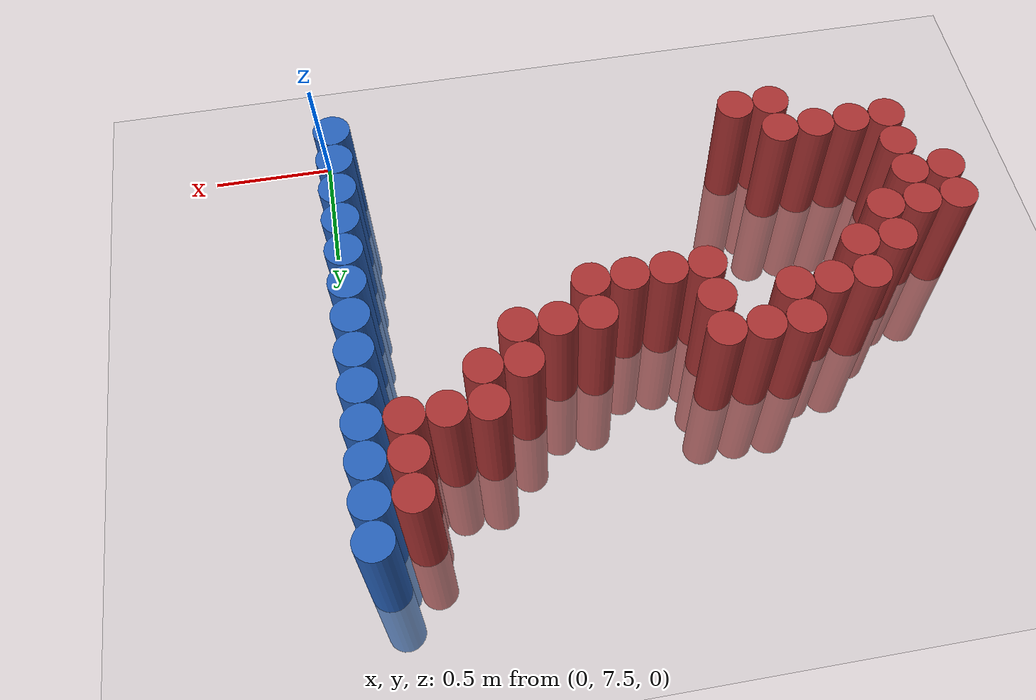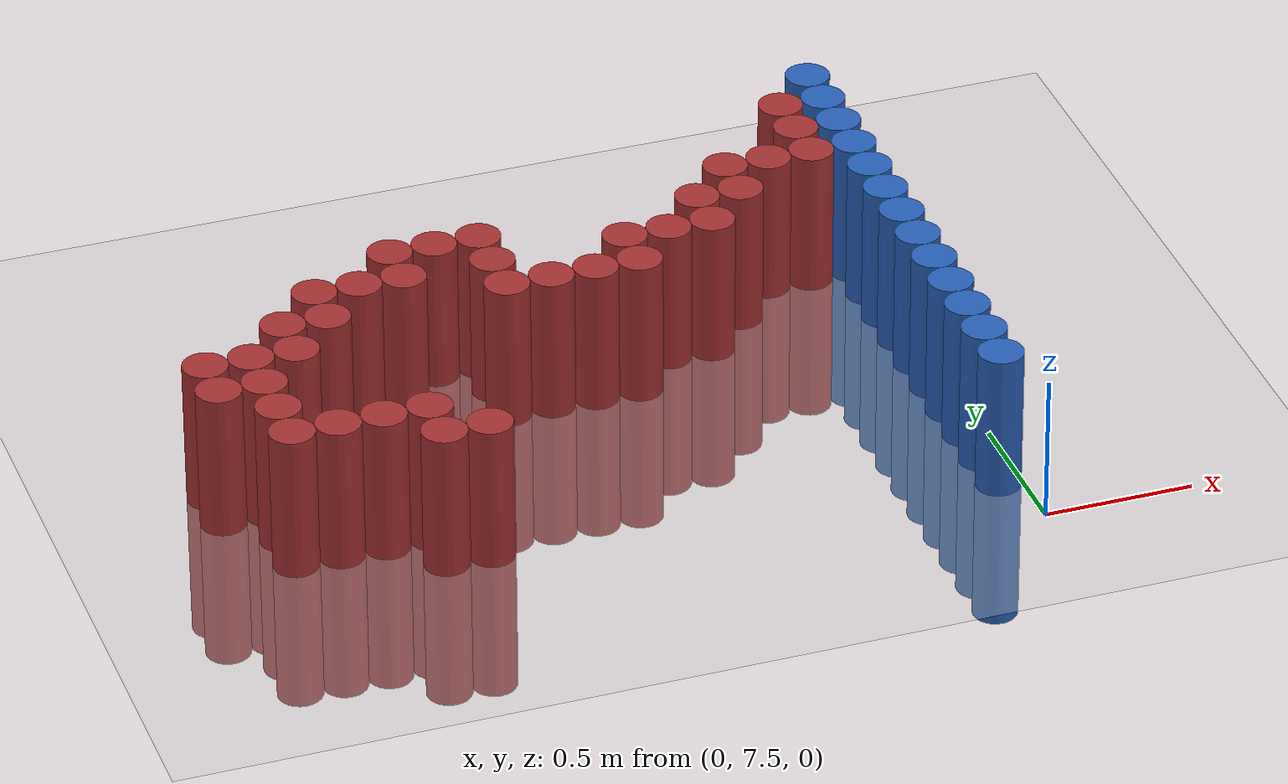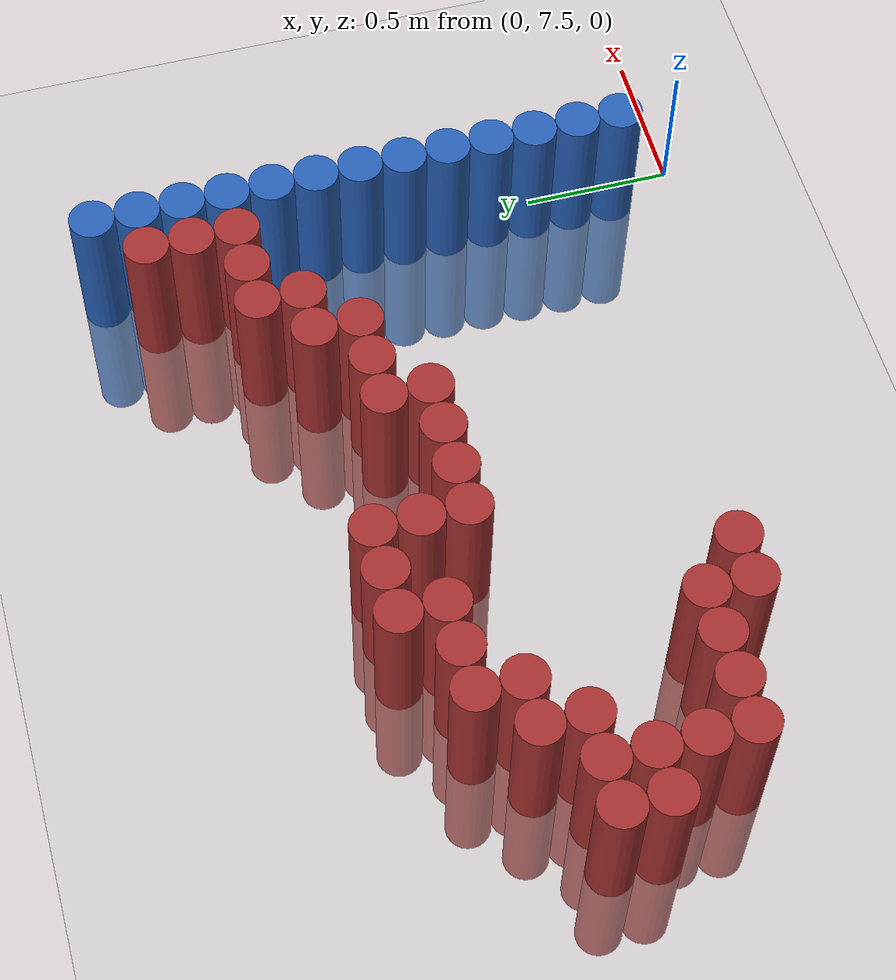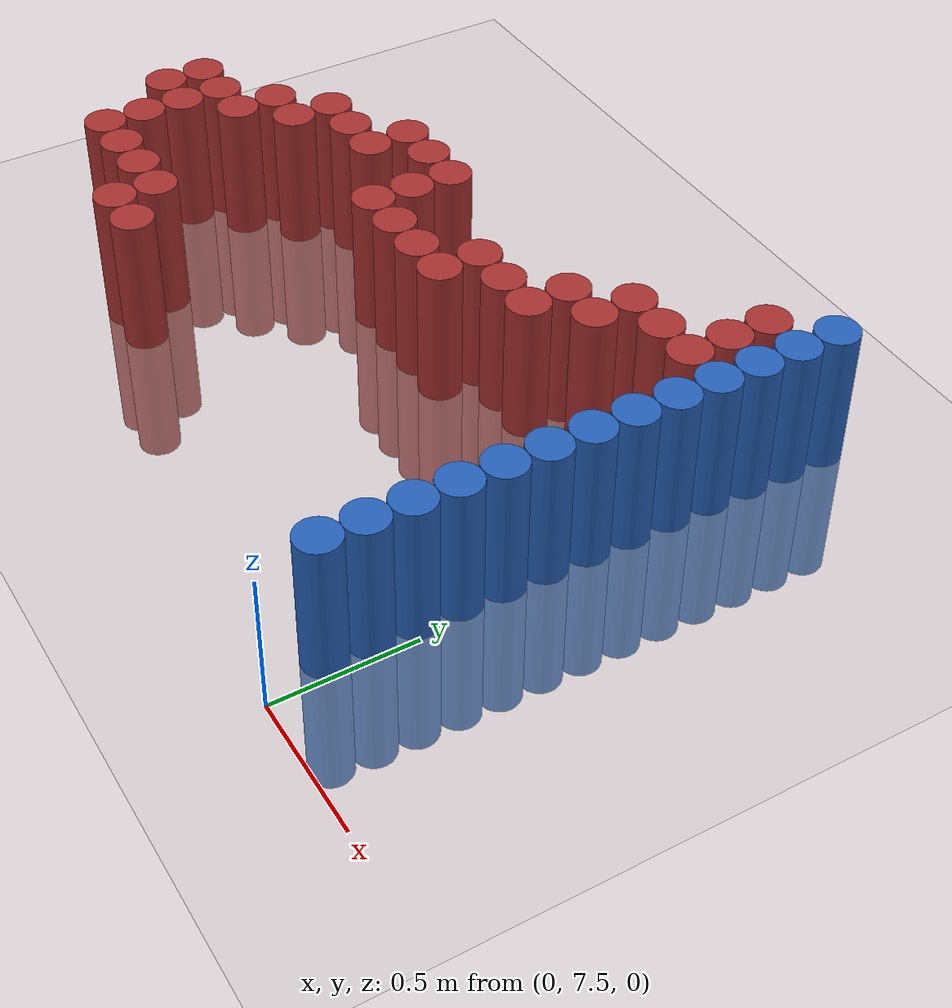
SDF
<sdf version="1.6">
 <world name="default">
  <model name="ground_plane">
   <static>1</static>
   <link name="link">
    <collision name="collision">
     <geometry><plane><normal>0 0 1</normal><size>100 100</size></plane></geometry>
     <surface><friction><ode><mu>100</mu><mu2>50</mu2></ode></friction></surface>
    </collision>
    <visual name="visual">
     <cast_shadows>0</cast_shadows>
     <geometry><plane><normal>0 0 1</normal><size>100 100</size></plane></geometry>
     <material>
      <script><uri>file://media/materials/scripts/gazebo.material</uri><name>Gazebo/Grey</name></script>
     </material>
    </visual>
   </link>
  </model>
  <model name="unit_cylinder_175">
   <static>1</static>
   <pose>-2.475000 8.325000 0.000000 0.000000 0.000000 0.000000</pose>
   <link name="link">
    <inertial>
     <mass>1</mass>
     <inertia><ixx>0.145833</ixx><ixy>0</ixy><ixz>0</ixz><iyy>0.145833</iyy><iyz>0</iyz><izz>0.125</izz></inertia>
    </inertial>
    <collision name="collision">
     <geometry><cylinder><radius>0.075000</radius><length>1</length></cylinder></geometry>
    </collision>
    <visual name="visual">
     <geometry><cylinder><radius>0.075000</radius><length>1</length></cylinder></geometry>
     <material>
      <ambient>0.648000 0.192000 0.192000 1</ambient>
      <diffuse>0.648000 0.192000 0.192000 1</diffuse>
     </material>
     <material>
      <script><name>Gazebo/Grey</name><uri>file://media/materials/scripts/gazebo.material</uri></script>
     </material>
    </visual>
   </link>
  </model>
  <model name="unit_cylinder_176">
   <static>1</static>
   <pose>-2.475000 8.475000 0.000000 0.000000 0.000000 0.000000</pose>
   <link name="link">
    <inertial>
     <mass>1</mass>
     <inertia><ixx>0.145833</ixx><ixy>0</ixy><ixz>0</ixz><iyy>0.145833</iyy><iyz>0</iyz><izz>0.125</izz></inertia>
    </inertial>
    <collision name="collision">
     <geometry><cylinder><radius>0.075000</radius><length>1</length></cylinder></geometry>
    </collision>
    <visual name="visual">
     <geometry><cylinder><radius>0.075000</radius><length>1</length></cylinder></geometry>
     <material>
      <ambient>0.648000 0.192000 0.192000 1</ambient>
      <diffuse>0.648000 0.192000 0.192000 1</diffuse>
     </material>
     <material>
      <script><name>Gazebo/Grey</name><uri>file://media/materials/scripts/gazebo.material</uri></script>
     </material>
    </visual>
   </link>
  </model>
  <model name="unit_cylinder_177">
   <static>1</static>
   <pose>-2.325000 8.025000 0.000000 0.000000 0.000000 0.000000</pose>
   <link name="link">
    <inertial>
     <mass>1</mass>
     <inertia><ixx>0.145833</ixx><ixy>0</ixy><ixz>0</ixz><iyy>0.145833</iyy><iyz>0</iyz><izz>0.125</izz></inertia>
    </inertial>
    <collision name="collision">
     <geometry><cylinder><radius>0.075000</radius><length>1</length></cylinder></geometry>
    </collision>
    <visual name="visual">
     <geometry><cylinder><radius>0.075000</radius><length>1</length></cylinder></geometry>
     <material>
      <ambient>0.648000 0.192000 0.192000 1</ambient>
      <diffuse>0.648000 0.192000 0.192000 1</diffuse>
     </material>
     <material>
      <script><name>Gazebo/Grey</name><uri>file://media/materials/scripts/gazebo.material</uri></script>
     </material>
    </visual>
   </link>
  </model>
  <model name="unit_cylinder_178">
   <static>1</static>
   <pose>-2.325000 8.175000 0.000000 0.000000 0.000000 0.000000</pose>
   <link name="link">
    <inertial>
     <mass>1</mass>
     <inertia><ixx>0.145833</ixx><ixy>0</ixy><ixz>0</ixz><iyy>0.145833</iyy><iyz>0</iyz><izz>0.125</izz></inertia>
    </inertial>
    <collision name="collision">
     <geometry><cylinder><radius>0.075000</radius><length>1</length></cylinder></geometry>
    </collision>
    <visual name="visual">
     <geometry><cylinder><radius>0.075000</radius><length>1</length></cylinder></geometry>
     <material>
      <ambient>0.648000 0.192000 0.192000 1</ambient>
      <diffuse>0.648000 0.192000 0.192000 1</diffuse>
     </material>
     <material>
      <script><name>Gazebo/Grey</name><uri>file://media/materials/scripts/gazebo.material</uri></script>
     </material>
    </visual>
   </link>
  </model>
  <model name="unit_cylinder_179">
   <static>1</static>
   <pose>-2.325000 8.325000 0.000000 0.000000 0.000000 0.000000</pose>
   <link name="link">
    <inertial>
     <mass>1</mass>
     <inertia><ixx>0.145833</ixx><ixy>0</ixy><ixz>0</ixz><iyy>0.145833</iyy><iyz>0</iyz><izz>0.125</izz></inertia>
    </inertial>
    <collision name="collision">
     <geometry><cylinder><radius>0.075000</radius><length>1</length></cylinder></geometry>
    </collision>
    <visual name="visual">
     <geometry><cylinder><radius>0.075000</radius><length>1</length></cylinder></geometry>
     <material>
      <ambient>0.648000 0.192000 0.192000 1</ambient>
      <diffuse>0.648000 0.192000 0.192000 1</diffuse>
     </material>
     <material>
      <script><name>Gazebo/Grey</name><uri>file://media/materials/scripts/gazebo.material</uri></script>
     </material>
    </visual>
   </link>
  </model>
  <model name="unit_cylinder_180">
   <static>1</static>
   <pose>-2.325000 8.475000 0.000000 0.000000 0.000000 0.000000</pose>
   <link name="link">
    <inertial>
     <mass>1</mass>
     <inertia><ixx>0.145833</ixx><ixy>0</ixy><ixz>0</ixz><iyy>0.145833</iyy><iyz>0</iyz><izz>0.125</izz></inertia>
    </inertial>
    <collision name="collision">
     <geometry><cylinder><radius>0.075000</radius><length>1</length></cylinder></geometry>
    </collision>
    <visual name="visual">
     <geometry><cylinder><radius>0.075000</radius><length>1</length></cylinder></geometry>
     <material>
      <ambient>0.648000 0.192000 0.192000 1</ambient>
      <diffuse>0.648000 0.192000 0.192000 1</diffuse>
     </material>
     <material>
      <script><name>Gazebo/Grey</name><uri>file://media/materials/scripts/gazebo.material</uri></script>
     </material>
    </visual>
   </link>
  </model>
  <model name="unit_cylinder_181">
   <static>1</static>
   <pose>-2.175000 8.025000 0.000000 0.000000 0.000000 0.000000</pose>
   <link name="link">
    <inertial>
     <mass>1</mass>
     <inertia><ixx>0.145833</ixx><ixy>0</ixy><ixz>0</ixz><iyy>0.145833</iyy><iyz>0</iyz><izz>0.125</izz></inertia>
    </inertial>
    <collision name="collision">
     <geometry><cylinder><radius>0.075000</radius><length>1</length></cylinder></geometry>
    </collision>
    <visual name="visual">
     <geometry><cylinder><radius>0.075000</radius><length>1</length></cylinder></geometry>
     <material>
      <ambient>0.648000 0.192000 0.192000 1</ambient>
      <diffuse>0.648000 0.192000 0.192000 1</diffuse>
     </material>
     <material>
      <script><name>Gazebo/Grey</name><uri>file://media/materials/scripts/gazebo.material</uri></script>
     </material>
    </visual>
   </link>
  </model>
  <model name="unit_cylinder_182">
   <static>1</static>
   <pose>-2.175000 8.475000 0.000000 0.000000 0.000000 0.000000</pose>
   <link name="link">
    <inertial>
     <mass>1</mass>
     <inertia><ixx>0.145833</ixx><ixy>0</ixy><ixz>0</ixz><iyy>0.145833</iyy><iyz>0</iyz><izz>0.125</izz></inertia>
    </inertial>
    <collision name="collision">
     <geometry><cylinder><radius>0.075000</radius><length>1</length></cylinder></geometry>
    </collision>
    <visual name="visual">
     <geometry><cylinder><radius>0.075000</radius><length>1</length></cylinder></geometry>
     <material>
      <ambient>0.648000 0.192000 0.192000 1</ambient>
      <diffuse>0.648000 0.192000 0.192000 1</diffuse>
     </material>
     <material>
      <script><name>Gazebo/Grey</name><uri>file://media/materials/scripts/gazebo.material</uri></script>
     </material>
    </visual>
   </link>
  </model>
  <model name="unit_cylinder_183">
   <static>1</static>
   <pose>-2.175000 8.625000 0.000000 0.000000 0.000000 0.000000</pose>
   <link name="link">
    <inertial>
     <mass>1</mass>
     <inertia><ixx>0.145833</ixx><ixy>0</ixy><ixz>0</ixz><iyy>0.145833</iyy><iyz>0</iyz><izz>0.125</izz></inertia>
    </inertial>
    <collision name="collision">
     <geometry><cylinder><radius>0.075000</radius><length>1</length></cylinder></geometry>
    </collision>
    <visual name="visual">
     <geometry><cylinder><radius>0.075000</radius><length>1</length></cylinder></geometry>
     <material>
      <ambient>0.648000 0.192000 0.192000 1</ambient>
      <diffuse>0.648000 0.192000 0.192000 1</diffuse>
     </material>
     <material>
      <script><name>Gazebo/Grey</name><uri>file://media/materials/scripts/gazebo.material</uri></script>
     </material>
    </visual>
   </link>
  </model>
  <model name="unit_cylinder_184">
   <static>1</static>
   <pose>-2.025000 8.025000 0.000000 0.000000 0.000000 0.000000</pose>
   <link name="link">
    <inertial>
     <mass>1</mass>
     <inertia><ixx>0.145833</ixx><ixy>0</ixy><ixz>0</ixz><iyy>0.145833</iyy><iyz>0</iyz><izz>0.125</izz></inertia>
    </inertial>
    <collision name="collision">
     <geometry><cylinder><radius>0.075000</radius><length>1</length></cylinder></geometry>
    </collision>
    <visual name="visual">
     <geometry><cylinder><radius>0.075000</radius><length>1</length></cylinder></geometry>
     <material>
      <ambient>0.648000 0.192000 0.192000 1</ambient>
      <diffuse>0.648000 0.192000 0.192000 1</diffuse>
     </material>
     <material>
      <script><name>Gazebo/Grey</name><uri>file://media/materials/scripts/gazebo.material</uri></script>
     </material>
    </visual>
   </link>
  </model>
  <model name="unit_cylinder_185">
   <static>1</static>
   <pose>-2.025000 8.625000 0.000000 0.000000 0.000000 0.000000</pose>
   <link name="link">
    <inertial>
     <mass>1</mass>
     <inertia><ixx>0.145833</ixx><ixy>0</ixy><ixz>0</ixz><iyy>0.145833</iyy><iyz>0</iyz><izz>0.125</izz></inertia>
    </inertial>
    <collision name="collision">
     <geometry><cylinder><radius>0.075000</radius><length>1</length></cylinder></geometry>
    </collision>
    <visual name="visual">
     <geometry><cylinder><radius>0.075000</radius><length>1</length></cylinder></geometry>
     <material>
      <ambient>0.648000 0.192000 0.192000 1</ambient>
      <diffuse>0.648000 0.192000 0.192000 1</diffuse>
     </material>
     <material>
      <script><name>Gazebo/Grey</name><uri>file://media/materials/scripts/gazebo.material</uri></script>
     </material>
    </visual>
   </link>
  </model>
  <model name="unit_cylinder_186">
   <static>1</static>
   <pose>-2.025000 8.775000 0.000000 0.000000 0.000000 0.000000</pose>
   <link name="link">
    <inertial>
     <mass>1</mass>
     <inertia><ixx>0.145833</ixx><ixy>0</ixy><ixz>0</ixz><iyy>0.145833</iyy><iyz>0</iyz><izz>0.125</izz></inertia>
    </inertial>
    <collision name="collision">
     <geometry><cylinder><radius>0.075000</radius><length>1</length></cylinder></geometry>
    </collision>
    <visual name="visual">
     <geometry><cylinder><radius>0.075000</radius><length>1</length></cylinder></geometry>
     <material>
      <ambient>0.648000 0.192000 0.192000 1</ambient>
      <diffuse>0.648000 0.192000 0.192000 1</diffuse>
     </material>
     <material>
      <script><name>Gazebo/Grey</name><uri>file://media/materials/scripts/gazebo.material</uri></script>
     </material>
    </visual>
   </link>
  </model>
  <model name="unit_cylinder_187">
   <static>1</static>
   <pose>-1.875000 7.875000 0.000000 0.000000 0.000000 0.000000</pose>
   <link name="link">
    <inertial>
     <mass>1</mass>
     <inertia><ixx>0.145833</ixx><ixy>0</ixy><ixz>0</ixz><iyy>0.145833</iyy><iyz>0</iyz><izz>0.125</izz></inertia>
    </inertial>
    <collision name="collision">
     <geometry><cylinder><radius>0.075000</radius><length>1</length></cylinder></geometry>
    </collision>
    <visual name="visual">
     <geometry><cylinder><radius>0.075000</radius><length>1</length></cylinder></geometry>
     <material>
      <ambient>0.648000 0.192000 0.192000 1</ambient>
      <diffuse>0.648000 0.192000 0.192000 1</diffuse>
     </material>
     <material>
      <script><name>Gazebo/Grey</name><uri>file://media/materials/scripts/gazebo.material</uri></script>
     </material>
    </visual>
   </link>
  </model>
  <model name="unit_cylinder_188">
   <static>1</static>
   <pose>-1.875000 8.025000 0.000000 0.000000 0.000000 0.000000</pose>
   <link name="link">
    <inertial>
     <mass>1</mass>
     <inertia><ixx>0.145833</ixx><ixy>0</ixy><ixz>0</ixz><iyy>0.145833</iyy><iyz>0</iyz><izz>0.125</izz></inertia>
    </inertial>
    <collision name="collision">
     <geometry><cylinder><radius>0.075000</radius><length>1</length></cylinder></geometry>
    </collision>
    <visual name="visual">
     <geometry><cylinder><radius>0.075000</radius><length>1</length></cylinder></geometry>
     <material>
      <ambient>0.648000 0.192000 0.192000 1</ambient>
      <diffuse>0.648000 0.192000 0.192000 1</diffuse>
     </material>
     <material>
      <script><name>Gazebo/Grey</name><uri>file://media/materials/scripts/gazebo.material</uri></script>
     </material>
    </visual>
   </link>
  </model>
  <model name="unit_cylinder_189">
   <static>1</static>
   <pose>-1.875000 8.775000 0.000000 0.000000 0.000000 0.000000</pose>
   <link name="link">
    <inertial>
     <mass>1</mass>
     <inertia><ixx>0.145833</ixx><ixy>0</ixy><ixz>0</ixz><iyy>0.145833</iyy><iyz>0</iyz><izz>0.125</izz></inertia>
    </inertial>
    <collision name="collision">
     <geometry><cylinder><radius>0.075000</radius><length>1</length></cylinder></geometry>
    </collision>
    <visual name="visual">
     <geometry><cylinder><radius>0.075000</radius><length>1</length></cylinder></geometry>
     <material>
      <ambient>0.648000 0.192000 0.192000 1</ambient>
      <diffuse>0.648000 0.192000 0.192000 1</diffuse>
     </material>
     <material>
      <script><name>Gazebo/Grey</name><uri>file://media/materials/scripts/gazebo.material</uri></script>
     </material>
    </visual>
   </link>
  </model>
  <model name="unit_cylinder_192">
   <static>1</static>
   <pose>-1.725000 7.875000 0.000000 0.000000 0.000000 0.000000</pose>
   <link name="link">
    <inertial>
     <mass>1</mass>
     <inertia><ixx>0.145833</ixx><ixy>0</ixy><ixz>0</ixz><iyy>0.145833</iyy><iyz>0</iyz><izz>0.125</izz></inertia>
    </inertial>
    <collision name="collision">
     <geometry><cylinder><radius>0.075000</radius><length>1</length></cylinder></geometry>
    </collision>
    <visual name="visual">
     <geometry><cylinder><radius>0.075000</radius><length>1</length></cylinder></geometry>
     <material>
      <ambient>0.648000 0.192000 0.192000 1</ambient>
      <diffuse>0.648000 0.192000 0.192000 1</diffuse>
     </material>
     <material>
      <script><name>Gazebo/Grey</name><uri>file://media/materials/scripts/gazebo.material</uri></script>
     </material>
    </visual>
   </link>
  </model>
  <model name="unit_cylinder_193">
   <static>1</static>
   <pose>-1.725000 8.775000 0.000000 0.000000 0.000000 0.000000</pose>
   <link name="link">
    <inertial>
     <mass>1</mass>
     <inertia><ixx>0.145833</ixx><ixy>0</ixy><ixz>0</ixz><iyy>0.145833</iyy><iyz>0</iyz><izz>0.125</izz></inertia>
    </inertial>
    <collision name="collision">
     <geometry><cylinder><radius>0.075000</radius><length>1</length></cylinder></geometry>
    </collision>
    <visual name="visual">
     <geometry><cylinder><radius>0.075000</radius><length>1</length></cylinder></geometry>
     <material>
      <ambient>0.648000 0.192000 0.192000 1</ambient>
      <diffuse>0.648000 0.192000 0.192000 1</diffuse>
     </material>
     <material>
      <script><name>Gazebo/Grey</name><uri>file://media/materials/scripts/gazebo.material</uri></script>
     </material>
    </visual>
   </link>
  </model>
  <model name="unit_cylinder_194">
   <static>1</static>
   <pose>-1.725000 8.925000 0.000000 0.000000 0.000000 0.000000</pose>
   <link name="link">
    <inertial>
     <mass>1</mass>
     <inertia><ixx>0.145833</ixx><ixy>0</ixy><ixz>0</ixz><iyy>0.145833</iyy><iyz>0</iyz><izz>0.125</izz></inertia>
    </inertial>
    <collision name="collision">
     <geometry><cylinder><radius>0.075000</radius><length>1</length></cylinder></geometry>
    </collision>
    <visual name="visual">
     <geometry><cylinder><radius>0.075000</radius><length>1</length></cylinder></geometry>
     <material>
      <ambient>0.648000 0.192000 0.192000 1</ambient>
      <diffuse>0.648000 0.192000 0.192000 1</diffuse>
     </material>
     <material>
      <script><name>Gazebo/Grey</name><uri>file://media/materials/scripts/gazebo.material</uri></script>
     </material>
    </visual>
   </link>
  </model>
  <model name="unit_cylinder_197">
   <static>1</static>
   <pose>-1.575000 8.925000 0.000000 0.000000 0.000000 0.000000</pose>
   <link name="link">
    <inertial>
     <mass>1</mass>
     <inertia><ixx>0.145833</ixx><ixy>0</ixy><ixz>0</ixz><iyy>0.145833</iyy><iyz>0</iyz><izz>0.125</izz></inertia>
    </inertial>
    <collision name="collision">
     <geometry><cylinder><radius>0.075000</radius><length>1</length></cylinder></geometry>
    </collision>
    <visual name="visual">
     <geometry><cylinder><radius>0.075000</radius><length>1</length></cylinder></geometry>
     <material>
      <ambient>0.648000 0.192000 0.192000 1</ambient>
      <diffuse>0.648000 0.192000 0.192000 1</diffuse>
     </material>
     <material>
      <script><name>Gazebo/Grey</name><uri>file://media/materials/scripts/gazebo.material</uri></script>
     </material>
    </visual>
   </link>
  </model>
  <model name="unit_cylinder_201">
   <static>1</static>
   <pose>-1.425000 8.625000 0.000000 0.000000 0.000000 0.000000</pose>
   <link name="link">
    <inertial>
     <mass>1</mass>
     <inertia><ixx>0.145833</ixx><ixy>0</ixy><ixz>0</ixz><iyy>0.145833</iyy><iyz>0</iyz><izz>0.125</izz></inertia>
    </inertial>
    <collision name="collision">
     <geometry><cylinder><radius>0.075000</radius><length>1</length></cylinder></geometry>
    </collision>
    <visual name="visual">
     <geometry><cylinder><radius>0.075000</radius><length>1</length></cylinder></geometry>
     <material>
      <ambient>0.648000 0.192000 0.192000 1</ambient>
      <diffuse>0.648000 0.192000 0.192000 1</diffuse>
     </material>
     <material>
      <script><name>Gazebo/Grey</name><uri>file://media/materials/scripts/gazebo.material</uri></script>
     </material>
    </visual>
   </link>
  </model>
  <model name="unit_cylinder_202">
   <static>1</static>
   <pose>-1.425000 8.775000 0.000000 0.000000 0.000000 0.000000</pose>
   <link name="link">
    <inertial>
     <mass>1</mass>
     <inertia><ixx>0.145833</ixx><ixy>0</ixy><ixz>0</ixz><iyy>0.145833</iyy><iyz>0</iyz><izz>0.125</izz></inertia>
    </inertial>
    <collision name="collision">
     <geometry><cylinder><radius>0.075000</radius><length>1</length></cylinder></geometry>
    </collision>
    <visual name="visual">
     <geometry><cylinder><radius>0.075000</radius><length>1</length></cylinder></geometry>
     <material>
      <ambient>0.648000 0.192000 0.192000 1</ambient>
      <diffuse>0.648000 0.192000 0.192000 1</diffuse>
     </material>
     <material>
      <script><name>Gazebo/Grey</name><uri>file://media/materials/scripts/gazebo.material</uri></script>
     </material>
    </visual>
   </link>
  </model>
  <model name="unit_cylinder_203">
   <static>1</static>
   <pose>-1.425000 8.925000 0.000000 0.000000 0.000000 0.000000</pose>
   <link name="link">
    <inertial>
     <mass>1</mass>
     <inertia><ixx>0.145833</ixx><ixy>0</ixy><ixz>0</ixz><iyy>0.145833</iyy><iyz>0</iyz><izz>0.125</izz></inertia>
    </inertial>
    <collision name="collision">
     <geometry><cylinder><radius>0.075000</radius><length>1</length></cylinder></geometry>
    </collision>
    <visual name="visual">
     <geometry><cylinder><radius>0.075000</radius><length>1</length></cylinder></geometry>
     <material>
      <ambient>0.648000 0.192000 0.192000 1</ambient>
      <diffuse>0.648000 0.192000 0.192000 1</diffuse>
     </material>
     <material>
      <script><name>Gazebo/Grey</name><uri>file://media/materials/scripts/gazebo.material</uri></script>
     </material>
    </visual>
   </link>
  </model>
  <model name="unit_cylinder_207">
   <static>1</static>
   <pose>-1.275000 8.625000 0.000000 0.000000 0.000000 0.000000</pose>
   <link name="link">
    <inertial>
     <mass>1</mass>
     <inertia><ixx>0.145833</ixx><ixy>0</ixy><ixz>0</ixz><iyy>0.145833</iyy><iyz>0</iyz><izz>0.125</izz></inertia>
    </inertial>
    <collision name="collision">
     <geometry><cylinder><radius>0.075000</radius><length>1</length></cylinder></geometry>
    </collision>
    <visual name="visual">
     <geometry><cylinder><radius>0.075000</radius><length>1</length></cylinder></geometry>
     <material>
      <ambient>0.648000 0.192000 0.192000 1</ambient>
      <diffuse>0.648000 0.192000 0.192000 1</diffuse>
     </material>
     <material>
      <script><name>Gazebo/Grey</name><uri>file://media/materials/scripts/gazebo.material</uri></script>
     </material>
    </visual>
   </link>
  </model>
  <model name="unit_cylinder_215">
   <static>1</static>
   <pose>-1.125000 8.625000 0.000000 0.000000 0.000000 0.000000</pose>
   <link name="link">
    <inertial>
     <mass>1</mass>
     <inertia><ixx>0.145833</ixx><ixy>0</ixy><ixz>0</ixz><iyy>0.145833</iyy><iyz>0</iyz><izz>0.125</izz></inertia>
    </inertial>
    <collision name="collision">
     <geometry><cylinder><radius>0.075000</radius><length>1</length></cylinder></geometry>
    </collision>
    <visual name="visual">
     <geometry><cylinder><radius>0.075000</radius><length>1</length></cylinder></geometry>
     <material>
      <ambient>0.648000 0.192000 0.192000 1</ambient>
      <diffuse>0.648000 0.192000 0.192000 1</diffuse>
     </material>
     <material>
      <script><name>Gazebo/Grey</name><uri>file://media/materials/scripts/gazebo.material</uri></script>
     </material>
    </visual>
   </link>
  </model>
  <model name="unit_cylinder_219">
   <static>1</static>
   <pose>-0.975000 8.625000 0.000000 0.000000 0.000000 0.000000</pose>
   <link name="link">
    <inertial>
     <mass>1</mass>
     <inertia><ixx>0.145833</ixx><ixy>0</ixy><ixz>0</ixz><iyy>0.145833</iyy><iyz>0</iyz><izz>0.125</izz></inertia>
    </inertial>
    <collision name="collision">
     <geometry><cylinder><radius>0.075000</radius><length>1</length></cylinder></geometry>
    </collision>
    <visual name="visual">
     <geometry><cylinder><radius>0.075000</radius><length>1</length></cylinder></geometry>
     <material>
      <ambient>0.648000 0.192000 0.192000 1</ambient>
      <diffuse>0.648000 0.192000 0.192000 1</diffuse>
     </material>
     <material>
      <script><name>Gazebo/Grey</name><uri>file://media/materials/scripts/gazebo.material</uri></script>
     </material>
    </visual>
   </link>
  </model>
  <model name="unit_cylinder_220">
   <static>1</static>
   <pose>-0.975000 8.775000 0.000000 0.000000 0.000000 0.000000</pose>
   <link name="link">
    <inertial>
     <mass>1</mass>
     <inertia><ixx>0.145833</ixx><ixy>0</ixy><ixz>0</ixz><iyy>0.145833</iyy><iyz>0</iyz><izz>0.125</izz></inertia>
    </inertial>
    <collision name="collision">
     <geometry><cylinder><radius>0.075000</radius><length>1</length></cylinder></geometry>
    </collision>
    <visual name="visual">
     <geometry><cylinder><radius>0.075000</radius><length>1</length></cylinder></geometry>
     <material>
      <ambient>0.648000 0.192000 0.192000 1</ambient>
      <diffuse>0.648000 0.192000 0.192000 1</diffuse>
     </material>
     <material>
      <script><name>Gazebo/Grey</name><uri>file://media/materials/scripts/gazebo.material</uri></script>
     </material>
    </visual>
   </link>
  </model>
  <model name="unit_cylinder_226">
   <static>1</static>
   <pose>-0.825000 8.775000 0.000000 0.000000 0.000000 0.000000</pose>
   <link name="link">
    <inertial>
     <mass>1</mass>
     <inertia><ixx>0.145833</ixx><ixy>0</ixy><ixz>0</ixz><iyy>0.145833</iyy><iyz>0</iyz><izz>0.125</izz></inertia>
    </inertial>
    <collision name="collision">
     <geometry><cylinder><radius>0.075000</radius><length>1</length></cylinder></geometry>
    </collision>
    <visual name="visual">
     <geometry><cylinder><radius>0.075000</radius><length>1</length></cylinder></geometry>
     <material>
      <ambient>0.648000 0.192000 0.192000 1</ambient>
      <diffuse>0.648000 0.192000 0.192000 1</diffuse>
     </material>
     <material>
      <script><name>Gazebo/Grey</name><uri>file://media/materials/scripts/gazebo.material</uri></script>
     </material>
    </visual>
   </link>
  </model>
  <model name="unit_cylinder_232">
   <static>1</static>
   <pose>-0.675000 8.775000 0.000000 0.000000 0.000000 0.000000</pose>
   <link name="link">
    <inertial>
     <mass>1</mass>
     <inertia><ixx>0.145833</ixx><ixy>0</ixy><ixz>0</ixz><iyy>0.145833</iyy><iyz>0</iyz><izz>0.125</izz></inertia>
    </inertial>
    <collision name="collision">
     <geometry><cylinder><radius>0.075000</radius><length>1</length></cylinder></geometry>
    </collision>
    <visual name="visual">
     <geometry><cylinder><radius>0.075000</radius><length>1</length></cylinder></geometry>
     <material>
      <ambient>0.648000 0.192000 0.192000 1</ambient>
      <diffuse>0.648000 0.192000 0.192000 1</diffuse>
     </material>
     <material>
      <script><name>Gazebo/Grey</name><uri>file://media/materials/scripts/gazebo.material</uri></script>
     </material>
    </visual>
   </link>
  </model>
  <model name="unit_cylinder_233">
   <static>1</static>
   <pose>-0.675000 8.925000 0.000000 0.000000 0.000000 0.000000</pose>
   <link name="link">
    <inertial>
     <mass>1</mass>
     <inertia><ixx>0.145833</ixx><ixy>0</ixy><ixz>0</ixz><iyy>0.145833</iyy><iyz>0</iyz><izz>0.125</izz></inertia>
    </inertial>
    <collision name="collision">
     <geometry><cylinder><radius>0.075000</radius><length>1</length></cylinder></geometry>
    </collision>
    <visual name="visual">
     <geometry><cylinder><radius>0.075000</radius><length>1</length></cylinder></geometry>
     <material>
      <ambient>0.648000 0.192000 0.192000 1</ambient>
      <diffuse>0.648000 0.192000 0.192000 1</diffuse>
     </material>
     <material>
      <script><name>Gazebo/Grey</name><uri>file://media/materials/scripts/gazebo.material</uri></script>
     </material>
    </visual>
   </link>
  </model>
  <model name="unit_cylinder_238">
   <static>1</static>
   <pose>-0.525000 8.925000 0.000000 0.000000 0.000000 0.000000</pose>
   <link name="link">
    <inertial>
     <mass>1</mass>
     <inertia><ixx>0.145833</ixx><ixy>0</ixy><ixz>0</ixz><iyy>0.145833</iyy><iyz>0</iyz><izz>0.125</izz></inertia>
    </inertial>
    <collision name="collision">
     <geometry><cylinder><radius>0.075000</radius><length>1</length></cylinder></geometry>
    </collision>
    <visual name="visual">
     <geometry><cylinder><radius>0.075000</radius><length>1</length></cylinder></geometry>
     <material>
      <ambient>0.648000 0.192000 0.192000 1</ambient>
      <diffuse>0.648000 0.192000 0.192000 1</diffuse>
     </material>
     <material>
      <script><name>Gazebo/Grey</name><uri>file://media/materials/scripts/gazebo.material</uri></script>
     </material>
    </visual>
   </link>
  </model>
  <model name="unit_cylinder_239">
   <static>1</static>
   <pose>-0.525000 9.075000 0.000000 0.000000 0.000000 0.000000</pose>
   <link name="link">
    <inertial>
     <mass>1</mass>
     <inertia><ixx>0.145833</ixx><ixy>0</ixy><ixz>0</ixz><iyy>0.145833</iyy><iyz>0</iyz><izz>0.125</izz></inertia>
    </inertial>
    <collision name="collision">
     <geometry><cylinder><radius>0.075000</radius><length>1</length></cylinder></geometry>
    </collision>
    <visual name="visual">
     <geometry><cylinder><radius>0.075000</radius><length>1</length></cylinder></geometry>
     <material>
      <ambient>0.648000 0.192000 0.192000 1</ambient>
      <diffuse>0.648000 0.192000 0.192000 1</diffuse>
     </material>
     <material>
      <script><name>Gazebo/Grey</name><uri>file://media/materials/scripts/gazebo.material</uri></script>
     </material>
    </visual>
   </link>
  </model>
  <model name="unit_cylinder_245">
   <static>1</static>
   <pose>-0.375000 9.075000 0.000000 0.000000 0.000000 0.000000</pose>
   <link name="link">
    <inertial>
     <mass>1</mass>
     <inertia><ixx>0.145833</ixx><ixy>0</ixy><ixz>0</ixz><iyy>0.145833</iyy><iyz>0</iyz><izz>0.125</izz></inertia>
    </inertial>
    <collision name="collision">
     <geometry><cylinder><radius>0.075000</radius><length>1</length></cylinder></geometry>
    </collision>
    <visual name="visual">
     <geometry><cylinder><radius>0.075000</radius><length>1</length></cylinder></geometry>
     <material>
      <ambient>0.648000 0.192000 0.192000 1</ambient>
      <diffuse>0.648000 0.192000 0.192000 1</diffuse>
     </material>
     <material>
      <script><name>Gazebo/Grey</name><uri>file://media/materials/scripts/gazebo.material</uri></script>
     </material>
    </visual>
   </link>
  </model>
  <model name="unit_cylinder_252">
   <static>1</static>
   <pose>-0.225000 9.075000 0.000000 0.000000 0.000000 0.000000</pose>
   <link name="link">
    <inertial>
     <mass>1</mass>
     <inertia><ixx>0.145833</ixx><ixy>0</ixy><ixz>0</ixz><iyy>0.145833</iyy><iyz>0</iyz><izz>0.125</izz></inertia>
    </inertial>
    <collision name="collision">
     <geometry><cylinder><radius>0.075000</radius><length>1</length></cylinder></geometry>
    </collision>
    <visual name="visual">
     <geometry><cylinder><radius>0.075000</radius><length>1</length></cylinder></geometry>
     <material>
      <ambient>0.648000 0.192000 0.192000 1</ambient>
      <diffuse>0.648000 0.192000 0.192000 1</diffuse>
     </material>
     <material>
      <script><name>Gazebo/Grey</name><uri>file://media/materials/scripts/gazebo.material</uri></script>
     </material>
    </visual>
   </link>
  </model>
  <model name="unit_cylinder_253">
   <static>1</static>
   <pose>-0.225000 9.225000 0.000000 0.000000 0.000000 0.000000</pose>
   <link name="link">
    <inertial>
     <mass>1</mass>
     <inertia><ixx>0.145833</ixx><ixy>0</ixy><ixz>0</ixz><iyy>0.145833</iyy><iyz>0</iyz><izz>0.125</izz></inertia>
    </inertial>
    <collision name="collision">
     <geometry><cylinder><radius>0.075000</radius><length>1</length></cylinder></geometry>
    </collision>
    <visual name="visual">
     <geometry><cylinder><radius>0.075000</radius><length>1</length></cylinder></geometry>
     <material>
      <ambient>0.648000 0.192000 0.192000 1</ambient>
      <diffuse>0.648000 0.192000 0.192000 1</diffuse>
     </material>
     <material>
      <script><name>Gazebo/Grey</name><uri>file://media/materials/scripts/gazebo.material</uri></script>
     </material>
    </visual>
   </link>
  </model>
  <model name="unit_cylinder_254">
   <static>1</static>
   <pose>-0.225000 9.375000 0.000000 0.000000 0.000000 0.000000</pose>
   <link name="link">
    <inertial>
     <mass>1</mass>
     <inertia><ixx>0.145833</ixx><ixy>0</ixy><ixz>0</ixz><iyy>0.145833</iyy><iyz>0</iyz><izz>0.125</izz></inertia>
    </inertial>
    <collision name="collision">
     <geometry><cylinder><radius>0.075000</radius><length>1</length></cylinder></geometry>
    </collision>
    <visual name="visual">
     <geometry><cylinder><radius>0.075000</radius><length>1</length></cylinder></geometry>
     <material>
      <ambient>0.648000 0.192000 0.192000 1</ambient>
      <diffuse>0.648000 0.192000 0.192000 1</diffuse>
     </material>
     <material>
      <script><name>Gazebo/Grey</name><uri>file://media/materials/scripts/gazebo.material</uri></script>
     </material>
    </visual>
   </link>
  </model>
  <model name="unit_cylinder_272">
   <static>1</static>
   <pose>-0.075000 7.725000 0.000000 0.000000 0.000000 0.000000</pose>
   <link name="link">
    <inertial>
     <mass>1</mass>
     <inertia><ixx>0.145833</ixx><ixy>0</ixy><ixz>0</ixz><iyy>0.145833</iyy><iyz>0</iyz><izz>0.125</izz></inertia>
    </inertial>
    <collision name="collision">
     <geometry><cylinder><radius>0.075000</radius><length>1</length></cylinder></geometry>
    </collision>
    <visual name="visual">
     <geometry><cylinder><radius>0.075000</radius><length>1</length></cylinder></geometry>
     <material>
      <ambient>0.152000 0.379000 0.720000 1</ambient>
      <diffuse>0.152000 0.379000 0.720000 1</diffuse>
     </material>
     <material>
      <script><name>Gazebo/Grey</name><uri>file://media/materials/scripts/gazebo.material</uri></script>
     </material>
    </visual>
   </link>
  </model>
  <model name="unit_cylinder_273">
   <static>1</static>
   <pose>-0.075000 7.875000 0.000000 0.000000 0.000000 0.000000</pose>
   <link name="link">
    <inertial>
     <mass>1</mass>
     <inertia><ixx>0.145833</ixx><ixy>0</ixy><ixz>0</ixz><iyy>0.145833</iyy><iyz>0</iyz><izz>0.125</izz></inertia>
    </inertial>
    <collision name="collision">
     <geometry><cylinder><radius>0.075000</radius><length>1</length></cylinder></geometry>
    </collision>
    <visual name="visual">
     <geometry><cylinder><radius>0.075000</radius><length>1</length></cylinder></geometry>
     <material>
      <ambient>0.152000 0.379000 0.720000 1</ambient>
      <diffuse>0.152000 0.379000 0.720000 1</diffuse>
     </material>
     <material>
      <script><name>Gazebo/Grey</name><uri>file://media/materials/scripts/gazebo.material</uri></script>
     </material>
    </visual>
   </link>
  </model>
  <model name="unit_cylinder_274">
   <static>1</static>
   <pose>-0.075000 8.025000 0.000000 0.000000 0.000000 0.000000</pose>
   <link name="link">
    <inertial>
     <mass>1</mass>
     <inertia><ixx>0.145833</ixx><ixy>0</ixy><ixz>0</ixz><iyy>0.145833</iyy><iyz>0</iyz><izz>0.125</izz></inertia>
    </inertial>
    <collision name="collision">
     <geometry><cylinder><radius>0.075000</radius><length>1</length></cylinder></geometry>
    </collision>
    <visual name="visual">
     <geometry><cylinder><radius>0.075000</radius><length>1</length></cylinder></geometry>
     <material>
      <ambient>0.152000 0.379000 0.720000 1</ambient>
      <diffuse>0.152000 0.379000 0.720000 1</diffuse>
     </material>
     <material>
      <script><name>Gazebo/Grey</name><uri>file://media/materials/scripts/gazebo.material</uri></script>
     </material>
    </visual>
   </link>
  </model>
  <model name="unit_cylinder_275">
   <static>1</static>
   <pose>-0.075000 8.175000 0.000000 0.000000 0.000000 0.000000</pose>
   <link name="link">
    <inertial>
     <mass>1</mass>
     <inertia><ixx>0.145833</ixx><ixy>0</ixy><ixz>0</ixz><iyy>0.145833</iyy><iyz>0</iyz><izz>0.125</izz></inertia>
    </inertial>
    <collision name="collision">
     <geometry><cylinder><radius>0.075000</radius><length>1</length></cylinder></geometry>
    </collision>
    <visual name="visual">
     <geometry><cylinder><radius>0.075000</radius><length>1</length></cylinder></geometry>
     <material>
      <ambient>0.152000 0.379000 0.720000 1</ambient>
      <diffuse>0.152000 0.379000 0.720000 1</diffuse>
     </material>
     <material>
      <script><name>Gazebo/Grey</name><uri>file://media/materials/scripts/gazebo.material</uri></script>
     </material>
    </visual>
   </link>
  </model>
  <model name="unit_cylinder_276">
   <static>1</static>
   <pose>-0.075000 8.325000 0.000000 0.000000 0.000000 0.000000</pose>
   <link name="link">
    <inertial>
     <mass>1</mass>
     <inertia><ixx>0.145833</ixx><ixy>0</ixy><ixz>0</ixz><iyy>0.145833</iyy><iyz>0</iyz><izz>0.125</izz></inertia>
    </inertial>
    <collision name="collision">
     <geometry><cylinder><radius>0.075000</radius><length>1</length></cylinder></geometry>
    </collision>
    <visual name="visual">
     <geometry><cylinder><radius>0.075000</radius><length>1</length></cylinder></geometry>
     <material>
      <ambient>0.152000 0.379000 0.720000 1</ambient>
      <diffuse>0.152000 0.379000 0.720000 1</diffuse>
     </material>
     <material>
      <script><name>Gazebo/Grey</name><uri>file://media/materials/scripts/gazebo.material</uri></script>
     </material>
    </visual>
   </link>
  </model>
  <model name="unit_cylinder_277">
   <static>1</static>
   <pose>-0.075000 8.475000 0.000000 0.000000 0.000000 0.000000</pose>
   <link name="link">
    <inertial>
     <mass>1</mass>
     <inertia><ixx>0.145833</ixx><ixy>0</ixy><ixz>0</ixz><iyy>0.145833</iyy><iyz>0</iyz><izz>0.125</izz></inertia>
    </inertial>
    <collision name="collision">
     <geometry><cylinder><radius>0.075000</radius><length>1</length></cylinder></geometry>
    </collision>
    <visual name="visual">
     <geometry><cylinder><radius>0.075000</radius><length>1</length></cylinder></geometry>
     <material>
      <ambient>0.152000 0.379000 0.720000 1</ambient>
      <diffuse>0.152000 0.379000 0.720000 1</diffuse>
     </material>
     <material>
      <script><name>Gazebo/Grey</name><uri>file://media/materials/scripts/gazebo.material</uri></script>
     </material>
    </visual>
   </link>
  </model>
  <model name="unit_cylinder_278">
   <static>1</static>
   <pose>-0.075000 8.625000 0.000000 0.000000 0.000000 0.000000</pose>
   <link name="link">
    <inertial>
     <mass>1</mass>
     <inertia><ixx>0.145833</ixx><ixy>0</ixy><ixz>0</ixz><iyy>0.145833</iyy><iyz>0</iyz><izz>0.125</izz></inertia>
    </inertial>
    <collision name="collision">
     <geometry><cylinder><radius>0.075000</radius><length>1</length></cylinder></geometry>
    </collision>
    <visual name="visual">
     <geometry><cylinder><radius>0.075000</radius><length>1</length></cylinder></geometry>
     <material>
      <ambient>0.152000 0.379000 0.720000 1</ambient>
      <diffuse>0.152000 0.379000 0.720000 1</diffuse>
     </material>
     <material>
      <script><name>Gazebo/Grey</name><uri>file://media/materials/scripts/gazebo.material</uri></script>
     </material>
    </visual>
   </link>
  </model>
  <model name="unit_cylinder_279">
   <static>1</static>
   <pose>-0.075000 8.775000 0.000000 0.000000 0.000000 0.000000</pose>
   <link name="link">
    <inertial>
     <mass>1</mass>
     <inertia><ixx>0.145833</ixx><ixy>0</ixy><ixz>0</ixz><iyy>0.145833</iyy><iyz>0</iyz><izz>0.125</izz></inertia>
    </inertial>
    <collision name="collision">
     <geometry><cylinder><radius>0.075000</radius><length>1</length></cylinder></geometry>
    </collision>
    <visual name="visual">
     <geometry><cylinder><radius>0.075000</radius><length>1</length></cylinder></geometry>
     <material>
      <ambient>0.152000 0.379000 0.720000 1</ambient>
      <diffuse>0.152000 0.379000 0.720000 1</diffuse>
     </material>
     <material>
      <script><name>Gazebo/Grey</name><uri>file://media/materials/scripts/gazebo.material</uri></script>
     </material>
    </visual>
   </link>
  </model>
  <model name="unit_cylinder_280">
   <static>1</static>
   <pose>-0.075000 8.925000 0.000000 0.000000 0.000000 0.000000</pose>
   <link name="link">
    <inertial>
     <mass>1</mass>
     <inertia><ixx>0.145833</ixx><ixy>0</ixy><ixz>0</ixz><iyy>0.145833</iyy><iyz>0</iyz><izz>0.125</izz></inertia>
    </inertial>
    <collision name="collision">
     <geometry><cylinder><radius>0.075000</radius><length>1</length></cylinder></geometry>
    </collision>
    <visual name="visual">
     <geometry><cylinder><radius>0.075000</radius><length>1</length></cylinder></geometry>
     <material>
      <ambient>0.152000 0.379000 0.720000 1</ambient>
      <diffuse>0.152000 0.379000 0.720000 1</diffuse>
     </material>
     <material>
      <script><name>Gazebo/Grey</name><uri>file://media/materials/scripts/gazebo.material</uri></script>
     </material>
    </visual>
   </link>
  </model>
  <model name="unit_cylinder_281">
   <static>1</static>
   <pose>-0.075000 9.075000 0.000000 0.000000 0.000000 0.000000</pose>
   <link name="link">
    <inertial>
     <mass>1</mass>
     <inertia><ixx>0.145833</ixx><ixy>0</ixy><ixz>0</ixz><iyy>0.145833</iyy><iyz>0</iyz><izz>0.125</izz></inertia>
    </inertial>
    <collision name="collision">
     <geometry><cylinder><radius>0.075000</radius><length>1</length></cylinder></geometry>
    </collision>
    <visual name="visual">
     <geometry><cylinder><radius>0.075000</radius><length>1</length></cylinder></geometry>
     <material>
      <ambient>0.152000 0.379000 0.720000 1</ambient>
      <diffuse>0.152000 0.379000 0.720000 1</diffuse>
     </material>
     <material>
      <script><name>Gazebo/Grey</name><uri>file://media/materials/scripts/gazebo.material</uri></script>
     </material>
    </visual>
   </link>
  </model>
  <model name="unit_cylinder_282">
   <static>1</static>
   <pose>-0.075000 9.225000 0.000000 0.000000 0.000000 0.000000</pose>
   <link name="link">
    <inertial>
     <mass>1</mass>
     <inertia><ixx>0.145833</ixx><ixy>0</ixy><ixz>0</ixz><iyy>0.145833</iyy><iyz>0</iyz><izz>0.125</izz></inertia>
    </inertial>
    <collision name="collision">
     <geometry><cylinder><radius>0.075000</radius><length>1</length></cylinder></geometry>
    </collision>
    <visual name="visual">
     <geometry><cylinder><radius>0.075000</radius><length>1</length></cylinder></geometry>
     <material>
      <ambient>0.152000 0.379000 0.720000 1</ambient>
      <diffuse>0.152000 0.379000 0.720000 1</diffuse>
     </material>
     <material>
      <script><name>Gazebo/Grey</name><uri>file://media/materials/scripts/gazebo.material</uri></script>
     </material>
    </visual>
   </link>
  </model>
  <model name="unit_cylinder_283">
   <static>1</static>
   <pose>-0.075000 9.375000 0.000000 0.000000 0.000000 0.000000</pose>
   <link name="link">
    <inertial>
     <mass>1</mass>
     <inertia><ixx>0.145833</ixx><ixy>0</ixy><ixz>0</ixz><iyy>0.145833</iyy><iyz>0</iyz><izz>0.125</izz></inertia>
    </inertial>
    <collision name="collision">
     <geometry><cylinder><radius>0.075000</radius><length>1</length></cylinder></geometry>
    </collision>
    <visual name="visual">
     <geometry><cylinder><radius>0.075000</radius><length>1</length></cylinder></geometry>
     <material>
      <ambient>0.152000 0.379000 0.720000 1</ambient>
      <diffuse>0.152000 0.379000 0.720000 1</diffuse>
     </material>
     <material>
      <script><name>Gazebo/Grey</name><uri>file://media/materials/scripts/gazebo.material</uri></script>
     </material>
    </visual>
   </link>
  </model>
  <model name="unit_cylinder_284">
   <static>1</static>
   <pose>-0.075000 9.525000 0.000000 0.000000 0.000000 0.000000</pose>
   <link name="link">
    <inertial>
     <mass>1</mass>
     <inertia><ixx>0.145833</ixx><ixy>0</ixy><ixz>0</ixz><iyy>0.145833</iyy><iyz>0</iyz><izz>0.125</izz></inertia>
    </inertial>
    <collision name="collision">
     <geometry><cylinder><radius>0.075000</radius><length>1</length></cylinder></geometry>
    </collision>
    <visual name="visual">
     <geometry><cylinder><radius>0.075000</radius><length>1</length></cylinder></geometry>
     <material>
      <ambient>0.152000 0.379000 0.720000 1</ambient>
      <diffuse>0.152000 0.379000 0.720000 1</diffuse>
     </material>
     <material>
      <script><name>Gazebo/Grey</name><uri>file://media/materials/scripts/gazebo.material</uri></script>
     </material>
    </visual>
   </link>
  </model>
 </world>
</sdf>
